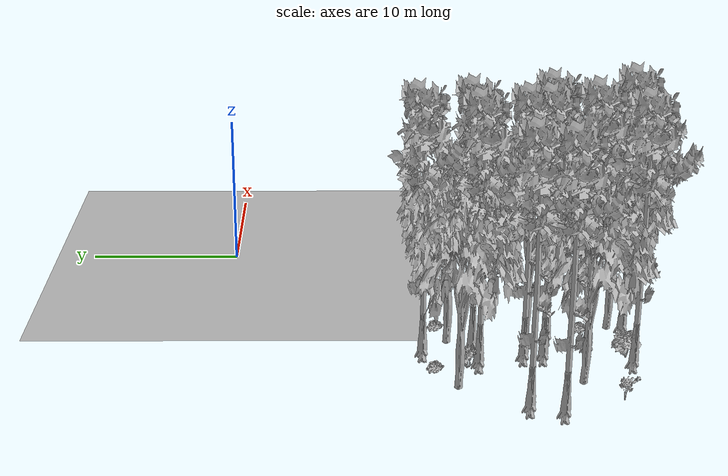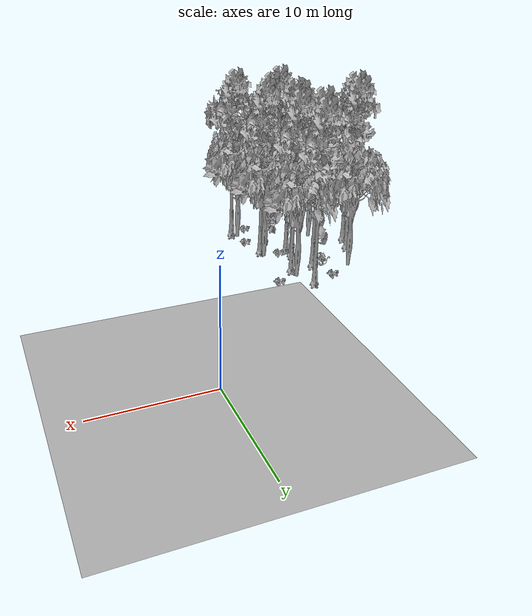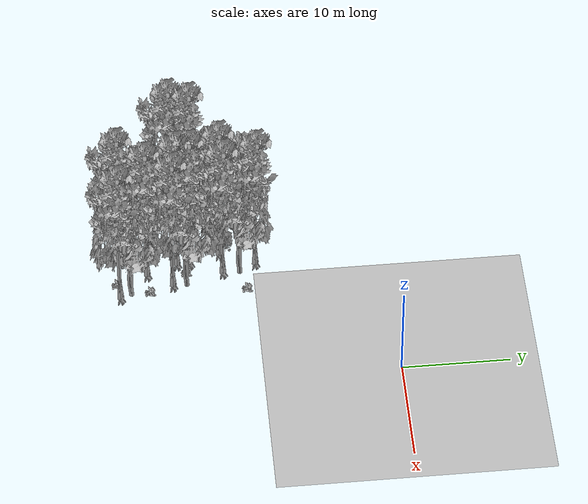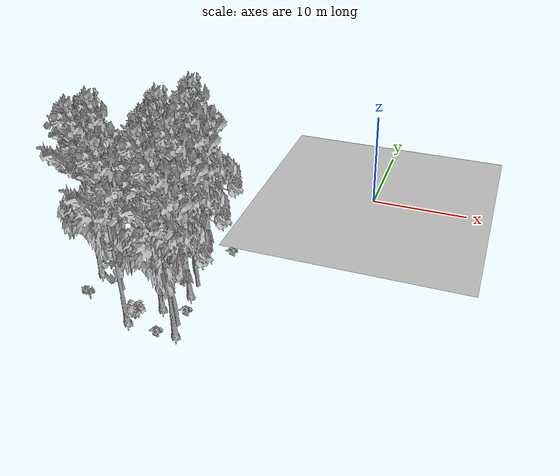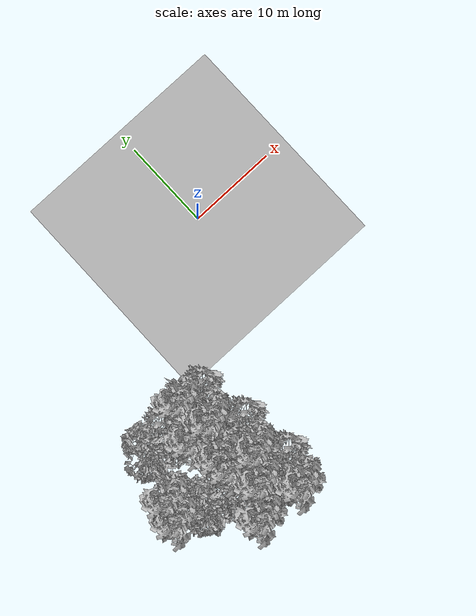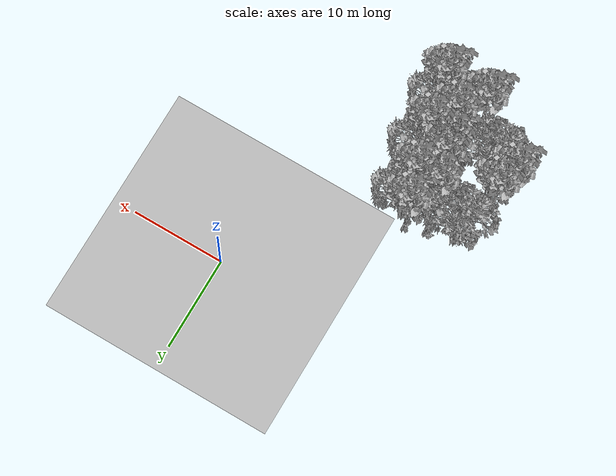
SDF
<sdf version="1.7">
 <world name="default">
  <model name="ground_plane">
   <static>1</static>
   <link name="link">
    <collision name="collision">
     <pose>-50 0 0 0 -0 0</pose>
     <geometry><plane><normal>0 0 1</normal><size>80 80</size></plane></geometry>
     <surface><contact><ode><min_depth>0.01</min_depth><max_vel>0</max_vel></ode></contact></surface>
    </collision>
    <visual name="grass">
     <cast_shadows>0</cast_shadows>
     <geometry>
      <mesh>
       <scale>0.46714285714285714 0.46714285714285714 0.1</scale>
       <uri>file://grass_plane/meshes/grass_plane.dae</uri>
      </mesh>
     </geometry>
    </visual>
   </link>
  </model>
  <model name="Tree 23">
   <static>1</static>
   <pose>-14.48661858609816 -19.63642505668779 0 1.57079 -0 0</pose>
   <link name="link">
    <collision name="collision">
     <geometry><mesh><scale>3.5 5 3.5</scale><uri>model://tree_9/meshes/tree_9.obj</uri></mesh></geometry>
    </collision>
    <visual name="visual">
     <geometry><mesh><scale>3.5 5 3.5</scale><uri>model://tree_9/meshes/tree_9.obj</uri></mesh></geometry>
    </visual>
   </link>
  </model>
  <model name="Tree 41">
   <static>1</static>
   <pose>-13.404665848892613 -22.515713576622414 0 1.57079 -0 0</pose>
   <link name="link">
    <collision name="collision">
     <geometry><mesh><scale>3.5 5 3.5</scale><uri>model://tree_9/meshes/tree_9.obj</uri></mesh></geometry>
    </collision>
    <visual name="visual">
     <geometry><mesh><scale>3.5 5 3.5</scale><uri>model://tree_9/meshes/tree_9.obj</uri></mesh></geometry>
    </visual>
   </link>
  </model>
  <model name="Tree 70">
   <static>1</static>
   <pose>-15.398860545211058 -24.955335327018815 0 1.57079 -0 0</pose>
   <link name="link">
    <collision name="collision">
     <geometry><mesh><scale>3.5 5 3.5</scale><uri>model://tree_9/meshes/tree_9.obj</uri></mesh></geometry>
    </collision>
    <visual name="visual">
     <geometry><mesh><scale>3.5 5 3.5</scale><uri>model://tree_9/meshes/tree_9.obj</uri></mesh></geometry>
    </visual>
   </link>
  </model>
  <model name="Tree 73">
   <static>1</static>
   <pose>-13.93970600318222 -12.313658585964006 0 1.57079 -0 0</pose>
   <link name="link">
    <collision name="collision">
     <geometry><mesh><scale>3.5 5 3.5</scale><uri>model://tree_9/meshes/tree_9.obj</uri></mesh></geometry>
    </collision>
    <visual name="visual">
     <geometry><mesh><scale>3.5 5 3.5</scale><uri>model://tree_9/meshes/tree_9.obj</uri></mesh></geometry>
    </visual>
   </link>
  </model>
  <model name="Tree 158">
   <static>1</static>
   <pose>-18.03745502322415 -21.550747352462743 0 1.57079 -0 0</pose>
   <link name="link">
    <collision name="collision">
     <geometry><mesh><scale>3.5 5 3.5</scale><uri>model://tree_2/meshes/tree_2.obj</uri></mesh></geometry>
    </collision>
    <visual name="visual">
     <geometry><mesh><scale>3.5 5 3.5</scale><uri>model://tree_2/meshes/tree_2.obj</uri></mesh></geometry>
    </visual>
   </link>
  </model>
  <model name="Tree 216">
   <static>1</static>
   <pose>-11.121579047114125 -24.139215679635004 0 1.57079 -0 0</pose>
   <link name="link">
    <collision name="collision">
     <geometry><mesh><scale>3.5 5 3.5</scale><uri>model://tree_2/meshes/tree_2.obj</uri></mesh></geometry>
    </collision>
    <visual name="visual">
     <geometry><mesh><scale>3.5 5 3.5</scale><uri>model://tree_2/meshes/tree_2.obj</uri></mesh></geometry>
    </visual>
   </link>
  </model>
  <model name="Tree 263">
   <static>1</static>
   <pose>-18.58067227689031 -14.17903381815595 0 1.57079 -0 0</pose>
   <link name="link">
    <collision name="collision">
     <geometry><mesh><scale>3.5 5 3.5</scale><uri>model://tree_2/meshes/tree_2.obj</uri></mesh></geometry>
    </collision>
    <visual name="visual">
     <geometry><mesh><scale>3.5 5 3.5</scale><uri>model://tree_2/meshes/tree_2.obj</uri></mesh></geometry>
    </visual>
   </link>
  </model>
  <model name="Tree 270">
   <static>1</static>
   <pose>-20.52154569126351 -18.070210204205814 0 1.57079 -0 0</pose>
   <link name="link">
    <collision name="collision">
     <geometry><mesh><scale>3.5 5 3.5</scale><uri>model://tree_9/meshes/tree_9.obj</uri></mesh></geometry>
    </collision>
    <visual name="visual">
     <geometry><mesh><scale>3.5 5 3.5</scale><uri>model://tree_9/meshes/tree_9.obj</uri></mesh></geometry>
    </visual>
   </link>
  </model>
  <model name="Tree 277">
   <static>1</static>
   <pose>-12.963605602969995 -13.884989043730542 0 1.57079 -0 0</pose>
   <link name="link">
    <collision name="collision">
     <geometry><mesh><scale>3.5 5 3.5</scale><uri>model://tree_2/meshes/tree_2.obj</uri></mesh></geometry>
    </collision>
    <visual name="visual">
     <geometry><mesh><scale>3.5 5 3.5</scale><uri>model://tree_2/meshes/tree_2.obj</uri></mesh></geometry>
    </visual>
   </link>
  </model>
  <model name="Tree 286">
   <static>1</static>
   <pose>-13.072489076208111 -15.42942807340923 0 1.57079 -0 0</pose>
   <link name="link">
    <collision name="collision">
     <geometry><mesh><scale>3.5 5 3.5</scale><uri>model://tree_9/meshes/tree_9.obj</uri></mesh></geometry>
    </collision>
    <visual name="visual">
     <geometry><mesh><scale>3.5 5 3.5</scale><uri>model://tree_9/meshes/tree_9.obj</uri></mesh></geometry>
    </visual>
   </link>
  </model>
  <model name="Tree 298">
   <static>1</static>
   <pose>-11.89479097065351 -20.174970542901846 0 1.57079 -0 0</pose>
   <link name="link">
    <collision name="collision">
     <geometry><mesh><scale>3.5 5 3.5</scale><uri>model://tree_9/meshes/tree_9.obj</uri></mesh></geometry>
    </collision>
    <visual name="visual">
     <geometry><mesh><scale>3.5 5 3.5</scale><uri>model://tree_9/meshes/tree_9.obj</uri></mesh></geometry>
    </visual>
   </link>
  </model>
  <model name="Tree 328">
   <static>1</static>
   <pose>-14.506451917084185 -18.431068653610374 0 1.57079 -0 0</pose>
   <link name="link">
    <collision name="collision">
     <geometry><mesh><scale>3.5 5 3.5</scale><uri>model://tree_9/meshes/tree_9.obj</uri></mesh></geometry>
    </collision>
    <visual name="visual">
     <geometry><mesh><scale>3.5 5 3.5</scale><uri>model://tree_9/meshes/tree_9.obj</uri></mesh></geometry>
    </visual>
   </link>
  </model>
  <model name="Tree 429">
   <static>1</static>
   <pose>-15.394234307158616 -15.639463029896639 0 1.57079 -0 0</pose>
   <link name="link">
    <collision name="collision">
     <geometry><mesh><scale>3.5 5 3.5</scale><uri>model://tree_9/meshes/tree_9.obj</uri></mesh></geometry>
    </collision>
    <visual name="visual">
     <geometry><mesh><scale>3.5 5 3.5</scale><uri>model://tree_9/meshes/tree_9.obj</uri></mesh></geometry>
    </visual>
   </link>
  </model>
  <model name="Tree 467">
   <static>1</static>
   <pose>-10.764077068524749 -25.138684036700543 0 1.57079 -0 0</pose>
   <link name="link">
    <collision name="collision">
     <geometry><mesh><scale>3.5 5 3.5</scale><uri>model://tree_9/meshes/tree_9.obj</uri></mesh></geometry>
    </collision>
    <visual name="visual">
     <geometry><mesh><scale>3.5 5 3.5</scale><uri>model://tree_9/meshes/tree_9.obj</uri></mesh></geometry>
    </visual>
   </link>
  </model>
  <model name="Tree 595">
   <static>1</static>
   <pose>-11.844579673090799 -18.922410505325054 0 1.57079 -0 0</pose>
   <link name="link">
    <collision name="collision">
     <geometry><mesh><scale>3.5 5 3.5</scale><uri>model://tree_2/meshes/tree_2.obj</uri></mesh></geometry>
    </collision>
    <visual name="visual">
     <geometry><mesh><scale>3.5 5 3.5</scale><uri>model://tree_2/meshes/tree_2.obj</uri></mesh></geometry>
    </visual>
   </link>
  </model>
  <model name="Tree 606">
   <static>1</static>
   <pose>-21.154656233519532 -19.95848032229386 0 1.57079 -0 0</pose>
   <link name="link">
    <collision name="collision">
     <geometry><mesh><scale>3.5 5 3.5</scale><uri>model://tree_9/meshes/tree_9.obj</uri></mesh></geometry>
    </collision>
    <visual name="visual">
     <geometry><mesh><scale>3.5 5 3.5</scale><uri>model://tree_9/meshes/tree_9.obj</uri></mesh></geometry>
    </visual>
   </link>
  </model>
  <model name="Bush 207">
   <static>1</static>
   <pose>-16.218987259459862 -12.968265546449096 0 1.57079 -0 0</pose>
   <link name="link">
    <collision name="collision">
     <geometry><mesh><scale>2 2 2</scale><uri>model://bush_2/meshes/bush_2.obj</uri></mesh></geometry>
     <surface><contact><collide_without_contact>false</collide_without_contact></contact></surface>
    </collision>
    <visual name="visual">
     <geometry><mesh><scale>2 2 2</scale><uri>model://bush_2/meshes/bush_2.obj</uri></mesh></geometry>
    </visual>
   </link>
  </model>
  <model name="Bush 225">
   <static>1</static>
   <pose>-10.877797205799169 -13.30908484922287 0 1.57079 -0 0</pose>
   <link name="link">
    <collision name="collision">
     <geometry><mesh><scale>2 2 2</scale><uri>model://bush_2/meshes/bush_2.obj</uri></mesh></geometry>
     <surface><contact><collide_without_contact>false</collide_without_contact></contact></surface>
    </collision>
    <visual name="visual">
     <geometry><mesh><scale>2 2 2</scale><uri>model://bush_2/meshes/bush_2.obj</uri></mesh></geometry>
    </visual>
   </link>
  </model>
  <model name="Bush 227">
   <static>1</static>
   <pose>-19.913942830123812 -23.542195925205576 0 1.57079 -0 0</pose>
   <link name="link">
    <collision name="collision">
     <geometry><mesh><scale>2 2 2</scale><uri>model://bush_5/meshes/bush_5.obj</uri></mesh></geometry>
     <surface><contact><collide_without_contact>false</collide_without_contact></contact></surface>
    </collision>
    <visual name="visual">
     <geometry><mesh><scale>2 2 2</scale><uri>model://bush_5/meshes/bush_5.obj</uri></mesh></geometry>
    </visual>
   </link>
  </model>
  <model name="Bush 344">
   <static>1</static>
   <pose>-14.871486406587621 -24.589269962363957 0 1.57079 -0 0</pose>
   <link name="link">
    <collision name="collision">
     <geometry><mesh><scale>2 2 2</scale><uri>model://bush_1/meshes/bush_1.obj</uri></mesh></geometry>
     <surface><contact><collide_without_contact>false</collide_without_contact></contact></surface>
    </collision>
    <visual name="visual">
     <geometry><mesh><scale>2 2 2</scale><uri>model://bush_1/meshes/bush_1.obj</uri></mesh></geometry>
    </visual>
   </link>
  </model>
  <model name="Bush 495">
   <static>1</static>
   <pose>-13.32819562445799 -18.862851629463915 0 1.57079 -0 0</pose>
   <link name="link">
    <collision name="collision">
     <geometry><mesh><scale>2 2 2</scale><uri>model://bush_2/meshes/bush_2.obj</uri></mesh></geometry>
     <surface><contact><collide_without_contact>false</collide_without_contact></contact></surface>
    </collision>
    <visual name="visual">
     <geometry><mesh><scale>2 2 2</scale><uri>model://bush_2/meshes/bush_2.obj</uri></mesh></geometry>
    </visual>
   </link>
  </model>
  <model name="Bush 510">
   <static>1</static>
   <pose>-16.021252439523735 -14.892146986704297 0 1.57079 -0 0</pose>
   <link name="link">
    <collision name="collision">
     <geometry><mesh><scale>2 2 2</scale><uri>model://bush_4/meshes/bush_4.obj</uri></mesh></geometry>
     <surface><contact><collide_without_contact>false</collide_without_contact></contact></surface>
    </collision>
    <visual name="visual">
     <geometry><mesh><scale>2 2 2</scale><uri>model://bush_4/meshes/bush_4.obj</uri></mesh></geometry>
    </visual>
   </link>
  </model>
  <model name="Bush 538">
   <static>1</static>
   <pose>-12.377505801325988 -25.433661258385428 0 1.57079 -0 0</pose>
   <link name="link">
    <collision name="collision">
     <geometry><mesh><scale>2 2 2</scale><uri>model://bush_2/meshes/bush_2.obj</uri></mesh></geometry>
     <surface><contact><collide_without_contact>false</collide_without_contact></contact></surface>
    </collision>
    <visual name="visual">
     <geometry><mesh><scale>2 2 2</scale><uri>model://bush_2/meshes/bush_2.obj</uri></mesh></geometry>
    </visual>
   </link>
  </model>
  <model name="Bush 622">
   <static>1</static>
   <pose>-11.20376654202575 -22.375368510842783 0 1.57079 -0 0</pose>
   <link name="link">
    <collision name="collision">
     <geometry><mesh><scale>2 2 2</scale><uri>model://bush_2/meshes/bush_2.obj</uri></mesh></geometry>
     <surface><contact><collide_without_contact>false</collide_without_contact></contact></surface>
    </collision>
    <visual name="visual">
     <geometry><mesh><scale>2 2 2</scale><uri>model://bush_2/meshes/bush_2.obj</uri></mesh></geometry>
    </visual>
   </link>
  </model>
 </world>
</sdf>
